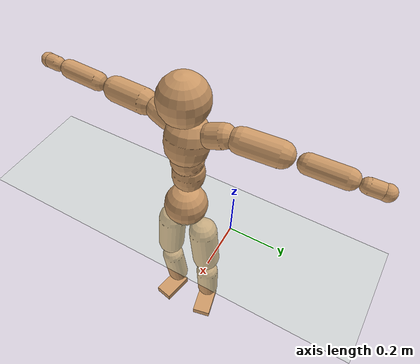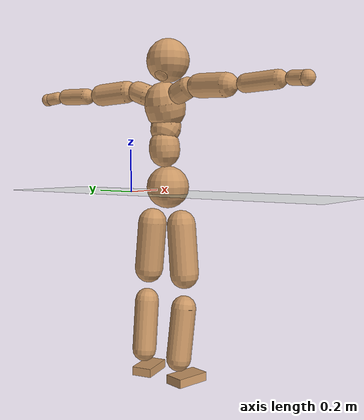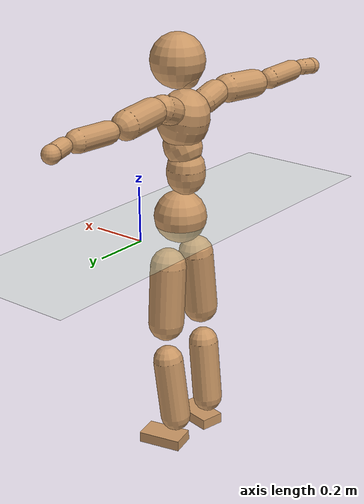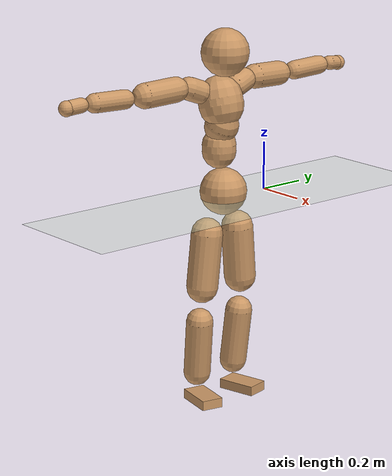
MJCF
<mujoco model="humanoid">
  <compiler coordinate="local"/>
  <default>
    <joint damping="0.0" armature="0.01" stiffness="0.0" limited="true"/>
    <geom conaffinity="1" condim="3" contype="7" margin="0.001" rgba="0.8 0.6 .4 1"/>
  </default>
  <asset>
    <texture type="skybox" builtin="gradient" rgb1=".4 .5 .6" rgb2="0 0 0" width="100" height="100"/>
    <texture builtin="flat" height="1278" mark="cross" markrgb="1 1 1" name="texgeom" random="0.01" rgb1="0.8 0.6 0.4" rgb2="0.8 0.6 0.4" type="cube" width="127"/>
    <texture builtin="checker" height="100" name="texplane" rgb1="0 0 0" rgb2="0.8 0.8 0.8" type="2d" width="100"/>
    <material name="MatPlane" reflectance="0.5" shininess="1" specular="1" texrepeat="60 60" texture="texplane"/>
    <material name="geom" texture="texgeom" texuniform="true"/>
  </asset>
  <worldbody>
    <light cutoff="100" diffuse="1 1 1" dir="-0 0 -1.3" directional="true" exponent="1" pos="0 0 1.3" specular=".1 .1 .1"/>
    <geom conaffinity="1" condim="3" name="floor" pos="0 0 0" rgba="0.8 0.9 0.8 1" size="100 100 .2" type="plane" material="MatPlane"/>
    <body name="Pelvis" pos="-0.0004 -0.222 0.0286">
      <freejoint name="Pelvis"/>
      <geom type="sphere" contype="1" conaffinity="1" density="500" size="0.0971" pos="0.0000 0.0000 0.0000" name="Pelvis"/>
      <body name="L_Hip" pos="-0.008 0.077 -0.0929">
        <joint name="L_Hip_x" type="hinge" pos="0 0 0" axis="1 0 0" stiffness="800" damping="80" armature="0.02" range="-180.0000 180.0000"/>
        <joint name="L_Hip_y" type="hinge" pos="0 0 0" axis="0 1 0" stiffness="800" damping="80" armature="0.02" range="-180.0000 180.0000"/>
        <joint name="L_Hip_z" type="hinge" pos="0 0 0" axis="0 0 1" stiffness="800" damping="80" armature="0.02" range="-180.0000 180.0000"/>
        <geom type="capsule" contype="1" conaffinity="1" density="500" fromto="-0.0010 0.0062 -0.0738 -0.0041 0.0250 -0.2952" size="0.0662" name="L_Hip"/>
        <body name="L_Knee" pos="-0.0052 0.0312 -0.3689">
          <joint name="L_Knee_x" type="hinge" pos="0 0 0" axis="1 0 0" stiffness="800" damping="80" armature="0.02" range="-180.0000 180.0000"/>
          <joint name="L_Knee_y" type="hinge" pos="0 0 0" axis="0 1 0" stiffness="800" damping="80" armature="0.02" range="-180.0000 180.0000"/>
          <joint name="L_Knee_z" type="hinge" pos="0 0 0" axis="0 0 1" stiffness="800" damping="80" armature="0.02" range="-180.0000 180.0000"/>
          <geom type="capsule" contype="1" conaffinity="1" density="500" fromto="-0.0094 -0.0022 -0.0767 -0.0376 -0.0088 -0.3069" size="0.0561" name="L_Knee"/>
          <body name="L_Ankle" pos="-0.047 -0.011 -0.3836">
            <joint name="L_Ankle_x" type="hinge" pos="0 0 0" axis="1 0 0" stiffness="800" damping="80" armature="0.02" range="-180.0000 180.0000"/>
            <joint name="L_Ankle_y" type="hinge" pos="0 0 0" axis="0 1 0" stiffness="800" damping="80" armature="0.02" range="-180.0000 180.0000"/>
            <joint name="L_Ankle_z" type="hinge" pos="0 0 0" axis="0 0 1" stiffness="800" damping="80" armature="0.02" range="-180.0000 180.0000"/>
            <geom type="box" contype="1" conaffinity="1" density="500" pos="0.0572 0.0129 -0.0272" size="0.0817 0.0469 0.0199" quat="0.9939 0.0000 0.0000 0.1104" name="L_Ankle"/>
            <body name="L_Toe" pos="0.1143 0.0257 -0.0543">
              <joint name="L_Toe_x" type="hinge" pos="0 0 0" axis="1 0 0" stiffness="500" damping="50" armature="0.02" range="-180.0000 180.0000"/>
              <joint name="L_Toe_y" type="hinge" pos="0 0 0" axis="0 1 0" stiffness="500" damping="50" armature="0.02" range="-180.0000 180.0000"/>
              <joint name="L_Toe_z" type="hinge" pos="0 0 0" axis="0 0 1" stiffness="500" damping="50" armature="0.02" range="-180.0000 180.0000"/>
              <geom type="box" contype="1" conaffinity="1" density="500" pos="0.0000 0.0000 0.0277" size="0.0009 0.0023 0.001" quat="0.9932 0.0000 0.0000 0.1167" name="L_Toe"/>
            </body>
          </body>
        </body>
      </body>
      <body name="R_Hip" pos="-0.0051 -0.0743 -0.092">
        <joint name="R_Hip_x" type="hinge" pos="0 0 0" axis="1 0 0" stiffness="800" damping="80" armature="0.02" range="-180.0000 180.0000"/>
        <joint name="R_Hip_y" type="hinge" pos="0 0 0" axis="0 1 0" stiffness="800" damping="80" armature="0.02" range="-180.0000 180.0000"/>
        <joint name="R_Hip_z" type="hinge" pos="0 0 0" axis="0 0 1" stiffness="800" damping="80" armature="0.02" range="-180.0000 180.0000"/>
        <geom type="capsule" contype="1" conaffinity="1" density="500" fromto="-0.0016 -0.0074 -0.0754 -0.0065 -0.0295 -0.3016" size="0.0654" name="R_Hip"/>
        <body name="R_Knee" pos="-0.0081 -0.0369 -0.377">
          <joint name="R_Knee_x" type="hinge" pos="0 0 0" axis="1 0 0" stiffness="800" damping="80" armature="0.02" range="-180.0000 180.0000"/>
          <joint name="R_Knee_y" type="hinge" pos="0 0 0" axis="0 1 0" stiffness="800" damping="80" armature="0.02" range="-180.0000 180.0000"/>
          <joint name="R_Knee_z" type="hinge" pos="0 0 0" axis="0 0 1" stiffness="800" damping="80" armature="0.02" range="-180.0000 180.0000"/>
          <geom type="capsule" contype="1" conaffinity="1" density="500" fromto="-0.0091 0.0027 -0.0769 -0.0363 0.0108 -0.3074" size="0.0563" name="R_Knee"/>
          <body name="R_Ankle" pos="-0.0454 0.0134 -0.3843">
            <joint name="R_Ankle_x" type="hinge" pos="0 0 0" axis="1 0 0" stiffness="800" damping="80" armature="0.02" range="-180.0000 180.0000"/>
            <joint name="R_Ankle_y" type="hinge" pos="0 0 0" axis="0 1 0" stiffness="800" damping="80" armature="0.02" range="-180.0000 180.0000"/>
            <joint name="R_Ankle_z" type="hinge" pos="0 0 0" axis="0 0 1" stiffness="800" damping="80" armature="0.02" range="-180.0000 180.0000"/>
            <geom type="box" contype="1" conaffinity="1" density="500" pos="0.0589 -0.0119 -0.0237" size="0.0825 0.0456 0.0201" quat="0.9950 0.0000 0.0000 -0.0995" name="R_Ankle"/>
            <body name="R_Toe" pos="0.1177 -0.0238 -0.0475">
              <joint name="R_Toe_x" type="hinge" pos="0 0 0" axis="1 0 0" stiffness="500" damping="50" armature="0.02" range="-180.0000 180.0000"/>
              <joint name="R_Toe_y" type="hinge" pos="0 0 0" axis="0 1 0" stiffness="500" damping="50" armature="0.02" range="-180.0000 180.0000"/>
              <joint name="R_Toe_z" type="hinge" pos="0 0 0" axis="0 0 1" stiffness="500" damping="50" armature="0.02" range="-180.0000 180.0000"/>
              <geom type="box" contype="1" conaffinity="1" density="500" pos="0.0000 0.0000 0.0255" size="0.0009 0.0023 0.0011" quat="0.9960 0.0000 0.0000 -0.0899" name="R_Toe"/>
            </body>
          </body>
        </body>
      </body>
      <body name="Torso" pos="-0.0241 -0.0025 0.1074">
        <joint name="Torso_x" type="hinge" pos="0 0 0" axis="1 0 0" stiffness="1000" damping="100" armature="0.02" range="-180.0000 180.0000"/>
        <joint name="Torso_y" type="hinge" pos="0 0 0" axis="0 1 0" stiffness="1000" damping="100" armature="0.02" range="-180.0000 180.0000"/>
        <joint name="Torso_z" type="hinge" pos="0 0 0" axis="0 0 1" stiffness="1000" damping="100" armature="0.02" range="-180.0000 180.0000"/>
        <geom type="capsule" contype="1" conaffinity="1" density="500" fromto="-0.0027 0.0023 0.0821 -0.0018 0.0015 0.0547" size="0.0704" name="Torso"/>
        <body name="Spine" pos="-0.0044 0.0039 0.1368">
          <joint name="Spine_x" type="hinge" pos="0 0 0" axis="1 0 0" stiffness="1000" damping="100" armature="0.02" range="-180.0000 180.0000"/>
          <joint name="Spine_y" type="hinge" pos="0 0 0" axis="0 1 0" stiffness="1000" damping="100" armature="0.02" range="-180.0000 180.0000"/>
          <joint name="Spine_z" type="hinge" pos="0 0 0" axis="0 0 1" stiffness="1000" damping="100" armature="0.02" range="-180.0000 180.0000"/>
          <geom type="capsule" contype="1" conaffinity="1" density="500" fromto="0.0177 0.0006 0.0304 0.0118 0.0004 0.0203" size="0.0695" name="Spine"/>
          <body name="Chest" pos="0.0295 0.001 0.0507">
            <joint name="Chest_x" type="hinge" pos="0 0 0" axis="1 0 0" stiffness="1000" damping="100" armature="0.02" range="-180.0000 180.0000"/>
            <joint name="Chest_y" type="hinge" pos="0 0 0" axis="0 1 0" stiffness="1000" damping="100" armature="0.02" range="-180.0000 180.0000"/>
            <joint name="Chest_z" type="hinge" pos="0 0 0" axis="0 0 1" stiffness="1000" damping="100" armature="0.02" range="-180.0000 180.0000"/>
            <geom type="capsule" contype="1" conaffinity="1" density="500" fromto="-0.0244 -0.0009 0.0890 -0.0163 -0.0006 0.0593" size="0.0924" name="Chest"/>
            <body name="Neck" pos="-0.0472 -0.0026 0.2118">
              <joint name="Neck_x" type="hinge" pos="0 0 0" axis="1 0 0" stiffness="500" damping="50" armature="0.02" range="-180.0000 180.0000"/>
              <joint name="Neck_y" type="hinge" pos="0 0 0" axis="0 1 0" stiffness="500" damping="50" armature="0.02" range="-180.0000 180.0000"/>
              <joint name="Neck_z" type="hinge" pos="0 0 0" axis="0 0 1" stiffness="500" damping="50" armature="0.02" range="-180.0000 180.0000"/>
              <geom type="capsule" contype="1" conaffinity="1" density="500" fromto="0.0102 0.0008 0.0134 0.0408 0.0033 0.0534" size="0.0403" name="Neck"/>
              <body name="Head" pos="0.0511 0.0041 0.0668">
                <joint name="Head_x" type="hinge" pos="0 0 0" axis="1 0 0" stiffness="500" damping="50" armature="0.02" range="-180.0000 180.0000"/>
                <joint name="Head_y" type="hinge" pos="0 0 0" axis="0 1 0" stiffness="500" damping="50" armature="0.02" range="-180.0000 180.0000"/>
                <joint name="Head_z" type="hinge" pos="0 0 0" axis="0 0 1" stiffness="500" damping="50" armature="0.02" range="-180.0000 180.0000"/>
                <geom type="sphere" contype="1" conaffinity="1" density="500" size="0.0984" pos="0.0000 0.0000 0.0000" name="Head"/>
              </body>
            </body>
            <body name="L_Thorax" pos="-0.0343 0.0728 0.1175">
              <joint name="L_Thorax_x" type="hinge" pos="0 0 0" axis="1 0 0" stiffness="500" damping="50" armature="0.02" range="-180.0000 180.0000"/>
              <joint name="L_Thorax_y" type="hinge" pos="0 0 0" axis="0 1 0" stiffness="500" damping="50" armature="0.02" range="-180.0000 180.0000"/>
              <joint name="L_Thorax_z" type="hinge" pos="0 0 0" axis="0 0 1" stiffness="500" damping="50" armature="0.02" range="-180.0000 180.0000"/>
              <geom type="capsule" contype="1" conaffinity="1" density="500" fromto="-0.0014 0.0164 0.0064 -0.0056 0.0657 0.0254" size="0.0491" name="L_Thorax"/>
              <body name="L_Shoulder" pos="-0.0069 0.0821 0.0318">
                <joint name="L_Shoulder_x" type="hinge" pos="0 0 0" axis="1 0 0" stiffness="500" damping="50" armature="0.02" range="-720.0000 720.0000"/>
                <joint name="L_Shoulder_y" type="hinge" pos="0 0 0" axis="0 1 0" stiffness="500" damping="50" armature="0.02" range="-720.0000 720.0000"/>
                <joint name="L_Shoulder_z" type="hinge" pos="0 0 0" axis="0 0 1" stiffness="500" damping="50" armature="0.02" range="-720.0000 720.0000"/>
                <geom type="capsule" contype="1" conaffinity="1" density="500" fromto="-0.0056 0.0487 -0.0025 -0.0223 0.1947 -0.0101" size="0.0511" name="L_Shoulder"/>
                <body name="L_Elbow" pos="-0.0279 0.2434 -0.0126">
                  <joint name="L_Elbow_x" type="hinge" pos="0 0 0" axis="1 0 0" stiffness="500" damping="50" armature="0.02" range="-720.0000 720.0000"/>
                  <joint name="L_Elbow_y" type="hinge" pos="0 0 0" axis="0 1 0" stiffness="500" damping="50" armature="0.02" range="-720.0000 720.0000"/>
                  <joint name="L_Elbow_z" type="hinge" pos="0 0 0" axis="0 0 1" stiffness="500" damping="50" armature="0.02" range="-720.0000 720.0000"/>
                  <geom type="capsule" contype="1" conaffinity="1" density="500" fromto="0.0002 0.0468 0.0017 0.0007 0.1870 0.0069" size="0.0392" name="L_Elbow"/>
                  <body name="L_Wrist" pos="0.0009 0.2338 0.0086">
                    <joint name="L_Wrist_x" type="hinge" pos="0 0 0" axis="1 0 0" stiffness="300" damping="30" armature="0.02" range="-180.0000 180.0000"/>
                    <joint name="L_Wrist_y" type="hinge" pos="0 0 0" axis="0 1 0" stiffness="300" damping="30" armature="0.02" range="-180.0000 180.0000"/>
                    <joint name="L_Wrist_z" type="hinge" pos="0 0 0" axis="0 0 1" stiffness="300" damping="30" armature="0.02" range="-180.0000 180.0000"/>
                    <geom type="capsule" contype="1" conaffinity="1" density="500" fromto="-0.0026 0.0156 -0.0019 -0.0103 0.0623 -0.0077" size="0.0296" name="L_Wrist"/>
                    <body name="L_Hand" pos="-0.0129 0.0779 -0.0096">
                      <joint name="L_Hand_x" type="hinge" pos="0 0 0" axis="1 0 0" stiffness="300" damping="30" armature="0.02" range="-180.0000 180.0000"/>
                      <joint name="L_Hand_y" type="hinge" pos="0 0 0" axis="0 1 0" stiffness="300" damping="30" armature="0.02" range="-180.0000 180.0000"/>
                      <joint name="L_Hand_z" type="hinge" pos="0 0 0" axis="0 0 1" stiffness="300" damping="30" armature="0.02" range="-180.0000 180.0000"/>
                      <geom type="sphere" contype="1" conaffinity="1" density="500" size="0.0315" pos="0.0000 0.0000 0.0000" name="L_Hand"/>
                    </body>
                  </body>
                </body>
              </body>
            </body>
            <body name="R_Thorax" pos="-0.0404 -0.0746 0.1156">
              <joint name="R_Thorax_x" type="hinge" pos="0 0 0" axis="1 0 0" stiffness="500" damping="50" armature="0.02" range="-180.0000 180.0000"/>
              <joint name="R_Thorax_y" type="hinge" pos="0 0 0" axis="0 1 0" stiffness="500" damping="50" armature="0.02" range="-180.0000 180.0000"/>
              <joint name="R_Thorax_z" type="hinge" pos="0 0 0" axis="0 0 1" stiffness="500" damping="50" armature="0.02" range="-180.0000 180.0000"/>
              <geom type="capsule" contype="1" conaffinity="1" density="500" fromto="-0.0017 -0.0172 0.0066 -0.0067 -0.0688 0.0262" size="0.0479" name="R_Thorax"/>
              <body name="R_Shoulder" pos="-0.0084 -0.086 0.0328">
                <joint name="R_Shoulder_x" type="hinge" pos="0 0 0" axis="1 0 0" stiffness="500" damping="50" armature="0.02" range="-720.0000 720.0000"/>
                <joint name="R_Shoulder_y" type="hinge" pos="0 0 0" axis="0 1 0" stiffness="500" damping="50" armature="0.02" range="-720.0000 720.0000"/>
                <joint name="R_Shoulder_z" type="hinge" pos="0 0 0" axis="0 0 1" stiffness="500" damping="50" armature="0.02" range="-720.0000 720.0000"/>
                <geom type="capsule" contype="1" conaffinity="1" density="500" fromto="-0.0044 -0.0478 -0.0026 -0.0178 -0.1914 -0.0103" size="0.0519" name="R_Shoulder"/>
                <body name="R_Elbow" pos="-0.0222 -0.2392 -0.0128">
                  <joint name="R_Elbow_x" type="hinge" pos="0 0 0" axis="1 0 0" stiffness="500" damping="50" armature="0.02" range="-720.0000 720.0000"/>
                  <joint name="R_Elbow_y" type="hinge" pos="0 0 0" axis="0 1 0" stiffness="500" damping="50" armature="0.02" range="-720.0000 720.0000"/>
                  <joint name="R_Elbow_z" type="hinge" pos="0 0 0" axis="0 0 1" stiffness="500" damping="50" armature="0.02" range="-720.0000 720.0000"/>
                  <geom type="capsule" contype="1" conaffinity="1" density="500" fromto="-0.0006 -0.0480 0.0015 -0.0024 -0.1918 0.0061" size="0.039" name="R_Elbow"/>
                  <body name="R_Wrist" pos="-0.003 -0.2398 0.0077">
                    <joint name="R_Wrist_x" type="hinge" pos="0 0 0" axis="1 0 0" stiffness="300" damping="30" armature="0.02" range="-180.0000 180.0000"/>
                    <joint name="R_Wrist_y" type="hinge" pos="0 0 0" axis="0 1 0" stiffness="300" damping="30" armature="0.02" range="-180.0000 180.0000"/>
                    <joint name="R_Wrist_z" type="hinge" pos="0 0 0" axis="0 0 1" stiffness="300" damping="30" armature="0.02" range="-180.0000 180.0000"/>
                    <geom type="capsule" contype="1" conaffinity="1" density="500" fromto="-0.0020 -0.0155 -0.0014 -0.0081 -0.0622 -0.0056" size="0.03" name="R_Wrist"/>
                    <body name="R_Hand" pos="-0.0101 -0.0777 -0.007">
                      <joint name="R_Hand_x" type="hinge" pos="0 0 0" axis="1 0 0" stiffness="300" damping="30" armature="0.02" range="-180.0000 180.0000"/>
                      <joint name="R_Hand_y" type="hinge" pos="0 0 0" axis="0 1 0" stiffness="300" damping="30" armature="0.02" range="-180.0000 180.0000"/>
                      <joint name="R_Hand_z" type="hinge" pos="0 0 0" axis="0 0 1" stiffness="300" damping="30" armature="0.02" range="-180.0000 180.0000"/>
                      <geom type="sphere" contype="1" conaffinity="1" density="500" size="0.0314" pos="0.0000 0.0000 0.0000" name="R_Hand"/>
                    </body>
                  </body>
                </body>
              </body>
            </body>
          </body>
        </body>
      </body>
    </body>
  </worldbody>
  <actuator>
    <motor name="L_Hip_x" joint="L_Hip_x" gear="500"/>
    <motor name="L_Hip_y" joint="L_Hip_y" gear="500"/>
    <motor name="L_Hip_z" joint="L_Hip_z" gear="500"/>
    <motor name="L_Knee_x" joint="L_Knee_x" gear="500"/>
    <motor name="L_Knee_y" joint="L_Knee_y" gear="500"/>
    <motor name="L_Knee_z" joint="L_Knee_z" gear="500"/>
    <motor name="L_Ankle_x" joint="L_Ankle_x" gear="500"/>
    <motor name="L_Ankle_y" joint="L_Ankle_y" gear="500"/>
    <motor name="L_Ankle_z" joint="L_Ankle_z" gear="500"/>
    <motor name="L_Toe_x" joint="L_Toe_x" gear="500"/>
    <motor name="L_Toe_y" joint="L_Toe_y" gear="500"/>
    <motor name="L_Toe_z" joint="L_Toe_z" gear="500"/>
    <motor name="R_Hip_x" joint="R_Hip_x" gear="500"/>
    <motor name="R_Hip_y" joint="R_Hip_y" gear="500"/>
    <motor name="R_Hip_z" joint="R_Hip_z" gear="500"/>
    <motor name="R_Knee_x" joint="R_Knee_x" gear="500"/>
    <motor name="R_Knee_y" joint="R_Knee_y" gear="500"/>
    <motor name="R_Knee_z" joint="R_Knee_z" gear="500"/>
    <motor name="R_Ankle_x" joint="R_Ankle_x" gear="500"/>
    <motor name="R_Ankle_y" joint="R_Ankle_y" gear="500"/>
    <motor name="R_Ankle_z" joint="R_Ankle_z" gear="500"/>
    <motor name="R_Toe_x" joint="R_Toe_x" gear="500"/>
    <motor name="R_Toe_y" joint="R_Toe_y" gear="500"/>
    <motor name="R_Toe_z" joint="R_Toe_z" gear="500"/>
    <motor name="Torso_x" joint="Torso_x" gear="500"/>
    <motor name="Torso_y" joint="Torso_y" gear="500"/>
    <motor name="Torso_z" joint="Torso_z" gear="500"/>
    <motor name="Spine_x" joint="Spine_x" gear="500"/>
    <motor name="Spine_y" joint="Spine_y" gear="500"/>
    <motor name="Spine_z" joint="Spine_z" gear="500"/>
    <motor name="Chest_x" joint="Chest_x" gear="500"/>
    <motor name="Chest_y" joint="Chest_y" gear="500"/>
    <motor name="Chest_z" joint="Chest_z" gear="500"/>
    <motor name="Neck_x" joint="Neck_x" gear="500"/>
    <motor name="Neck_y" joint="Neck_y" gear="500"/>
    <motor name="Neck_z" joint="Neck_z" gear="500"/>
    <motor name="Head_x" joint="Head_x" gear="500"/>
    <motor name="Head_y" joint="Head_y" gear="500"/>
    <motor name="Head_z" joint="Head_z" gear="500"/>
    <motor name="L_Thorax_x" joint="L_Thorax_x" gear="500"/>
    <motor name="L_Thorax_y" joint="L_Thorax_y" gear="500"/>
    <motor name="L_Thorax_z" joint="L_Thorax_z" gear="500"/>
    <motor name="L_Shoulder_x" joint="L_Shoulder_x" gear="500"/>
    <motor name="L_Shoulder_y" joint="L_Shoulder_y" gear="500"/>
    <motor name="L_Shoulder_z" joint="L_Shoulder_z" gear="500"/>
    <motor name="L_Elbow_x" joint="L_Elbow_x" gear="500"/>
    <motor name="L_Elbow_y" joint="L_Elbow_y" gear="500"/>
    <motor name="L_Elbow_z" joint="L_Elbow_z" gear="500"/>
    <motor name="L_Wrist_x" joint="L_Wrist_x" gear="500"/>
    <motor name="L_Wrist_y" joint="L_Wrist_y" gear="500"/>
    <motor name="L_Wrist_z" joint="L_Wrist_z" gear="500"/>
    <motor name="L_Hand_x" joint="L_Hand_x" gear="500"/>
    <motor name="L_Hand_y" joint="L_Hand_y" gear="500"/>
    <motor name="L_Hand_z" joint="L_Hand_z" gear="500"/>
    <motor name="R_Thorax_x" joint="R_Thorax_x" gear="500"/>
    <motor name="R_Thorax_y" joint="R_Thorax_y" gear="500"/>
    <motor name="R_Thorax_z" joint="R_Thorax_z" gear="500"/>
    <motor name="R_Shoulder_x" joint="R_Shoulder_x" gear="500"/>
    <motor name="R_Shoulder_y" joint="R_Shoulder_y" gear="500"/>
    <motor name="R_Shoulder_z" joint="R_Shoulder_z" gear="500"/>
    <motor name="R_Elbow_x" joint="R_Elbow_x" gear="500"/>
    <motor name="R_Elbow_y" joint="R_Elbow_y" gear="500"/>
    <motor name="R_Elbow_z" joint="R_Elbow_z" gear="500"/>
    <motor name="R_Wrist_x" joint="R_Wrist_x" gear="500"/>
    <motor name="R_Wrist_y" joint="R_Wrist_y" gear="500"/>
    <motor name="R_Wrist_z" joint="R_Wrist_z" gear="500"/>
    <motor name="R_Hand_x" joint="R_Hand_x" gear="500"/>
    <motor name="R_Hand_y" joint="R_Hand_y" gear="500"/>
    <motor name="R_Hand_z" joint="R_Hand_z" gear="500"/>
  </actuator>
  <contact>
    <exclude body1="Torso" body2="Chest"/>
    <exclude body1="Head" body2="Chest"/>
    <exclude body1="R_Knee" body2="R_Toe"/>
    <exclude body1="R_Knee" body2="L_Ankle"/>
    <exclude body1="R_Knee" body2="L_Toe"/>
    <exclude body1="L_Knee" body2="L_Toe"/>
    <exclude body1="L_Knee" body2="R_Ankle"/>
    <exclude body1="L_Knee" body2="R_Toe"/>
    <exclude body1="L_Shoulder" body2="Chest"/>
    <exclude body1="R_Shoulder" body2="Chest"/>
  </contact>
  <sensor/>
  <size njmax="700" nconmax="700"/>
</mujoco>
